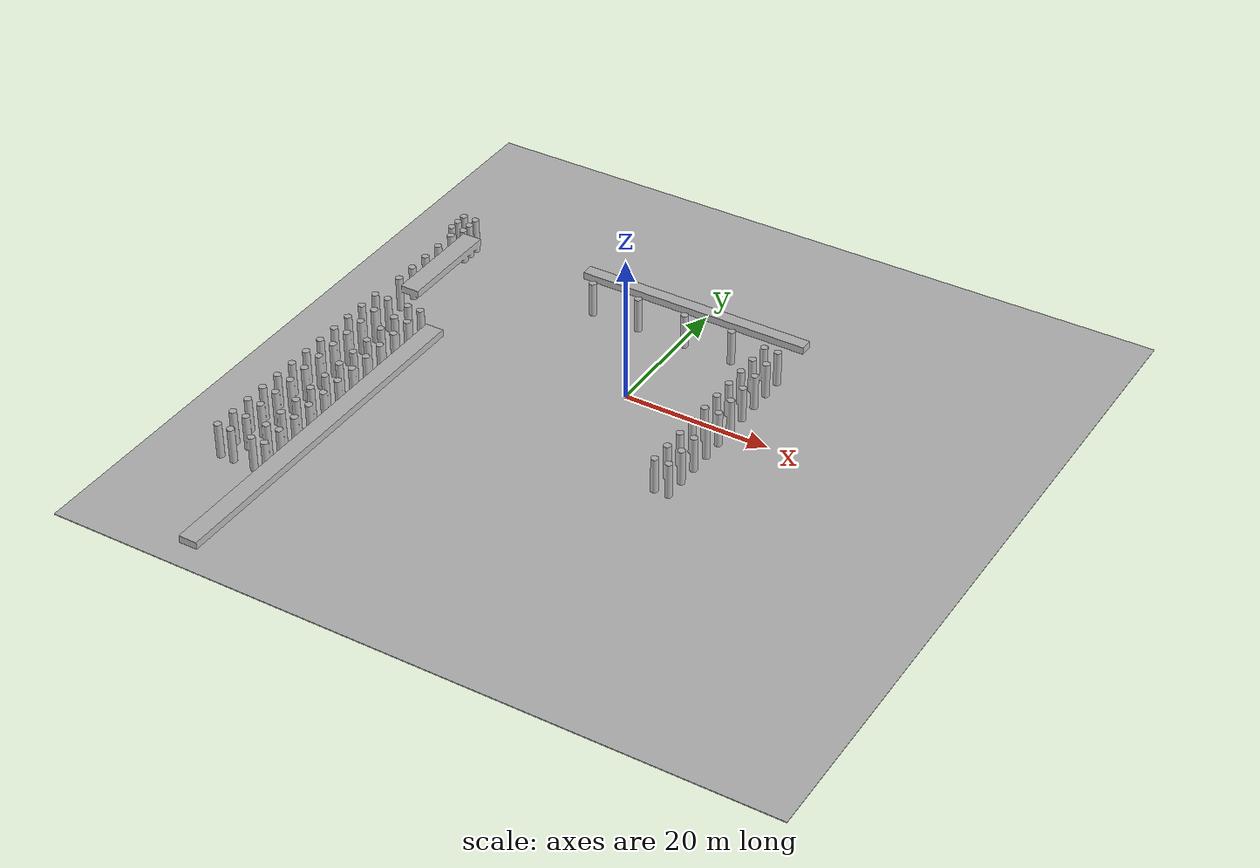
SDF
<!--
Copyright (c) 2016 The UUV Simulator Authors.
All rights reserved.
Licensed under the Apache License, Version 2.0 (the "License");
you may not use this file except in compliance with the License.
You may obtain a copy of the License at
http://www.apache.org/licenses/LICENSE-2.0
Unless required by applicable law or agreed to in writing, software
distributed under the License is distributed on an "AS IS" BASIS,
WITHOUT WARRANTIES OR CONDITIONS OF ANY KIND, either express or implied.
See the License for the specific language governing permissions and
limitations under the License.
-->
<?xml version="1.0" ?>
<sdf version="1.5">
  <world name="RFAL_land">
    <physics name="default_physics" default="true" type="ode">
      <max_step_size>0.002</max_step_size>
      <real_time_factor>1</real_time_factor>
      <real_time_update_rate>500</real_time_update_rate>
      <ode>
        <solver>
          <type>quick</type>
          <iters>50</iters>
          <sor>0.5</sor>
        </solver>
      </ode>
    </physics>
    <scene>
      <ambient>0.01 0.01 0.01 1.0</ambient>
    </scene>

    <!-- Origin placed somewhere in the middle of the North Sea  -->
    <spherical_coordinates>
      <latitude_deg>56.71897669633431</latitude_deg>
      <longitude_deg>3.515625</longitude_deg>
    </spherical_coordinates>

    <!-- Global light source -->
    <include>
      <uri>model://sun</uri>
    </include>

    <!-- Bounding box with sea surface -->
    <include>
      <uri>model://suny_maritime</uri>
      <pose>0 0 0 0 0 0</pose>
    </include>

    <plugin name="underwater_current_plugin" filename="libuuv_underwater_current_ros_plugin.so">
      <namespace>hydrodynamics</namespace>
      <constant_current>
        <topic>current_velocity</topic>
        <velocity>
          <mean>0</mean>
          <min>0</min>
          <max>5</max>
          <mu>0.0</mu>
          <noiseAmp>0.0</noiseAmp>
        </velocity>

        <horizontal_angle>
          <mean>0</mean>
          <min>-3.141592653589793238</min>
          <max>3.141592653589793238</max>
          <mu>0.0</mu>
          <noiseAmp>0.0</noiseAmp>
        </horizontal_angle>

        <vertical_angle>
          <mean>0</mean>
          <min>-3.141592653589793238</min>
          <max>3.141592653589793238</max>
          <mu>0.0</mu>
          <noiseAmp>0.0</noiseAmp>
        </vertical_angle>
      </constant_current>
    </plugin>

    <plugin name="sc_interface" filename="libuuv_sc_ros_interface_plugin.so"/>

  </world>
</sdf>

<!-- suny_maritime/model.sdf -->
<sdf version="1.5">

  <model name="suny_maritime">
    <static>true</static>
    <link name="link">
      <visual name="ground">
        <cast_shadows>false</cast_shadows>
        <pose>0 0 -5 0 0 0</pose>
        <geometry>
          <box>
            <size>100 100 .1</size>
          </box>
        </geometry>
        <material>
          <script>
            <uri>file://Media/materials/scripts/sand.material</uri>
            <name>UUVSimulator/SandAndStones</name>
          </script>
        </material>
      </visual>

      <collision name="ground">
        <pose>0 0 -5 0 0 0</pose>
        <geometry>
          <box>
            <size>100 100 .1</size>
          </box>
        </geometry>
      </collision>

      <visual name="platform">
          <cast_shadows>false</cast_shadows>
          <pose>0 20 0 0 0 -1.07</pose>
          <geometry>
              <mesh><uri>model://suny_maritime/meshes/suny_maritime.stl</uri><scale>1 1 1 </scale></mesh>
          </geometry>
      </visual>

      <collision name="platform">
          <pose>0 20 0 0 0 -1.07</pose>
          <geometry>
              <mesh><uri>model://suny_maritime/meshes/suny_maritime.stl</uri><scale>1 1 1 </scale></mesh>
          </geometry>
      </collision>

    </link>
  </model>
</sdf>
